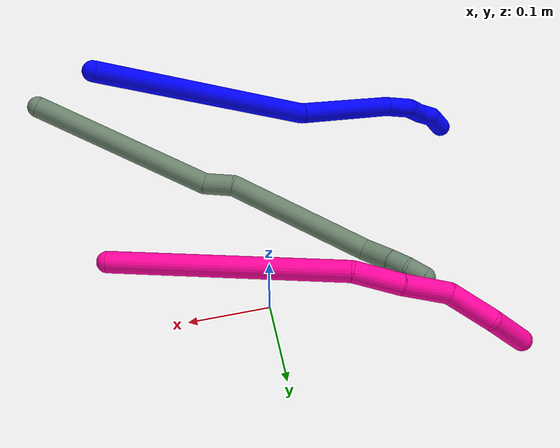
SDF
<sdf version="1.7">
 <world name="default">
  <model name="1">
   <static>0</static>
   <link name="1">
    <collision name="collision-cylinder-e_1_1_4">
     <pose>-0.005175 -0.004059 -0.13392 3.11129 -0.038607 -1.81082</pose>
     <geometry><cylinder><radius>0.0125</radius><length>0.268162</length></cylinder></geometry>
     <surface>
      <friction><ode><mu>1.16</mu><mu2>1.16</mu2><slip1>0</slip1><slip2>0</slip2></ode></friction>
      <contact><ode><kp>1e+06</kp><kd>1</kd><max_vel>0</max_vel><min_depth>0.001</min_depth></ode></contact>
     </surface>
    </collision>
    <visual name="visual-cylinder-e_1_1_4">
     <pose>-0.005175 -0.004059 -0.13392 3.11129 -0.038607 -1.81082</pose>
     <geometry><cylinder><radius>0.0125</radius><length>0.268162</length></cylinder></geometry>
     <material><ambient>0 0 1 1</ambient></material>
    </visual>
    <collision name="collision-cylinder-e_2_4_5">
     <pose>0.000253 0.002807 -0.332864 -2.97514 0.159446 -1.52762</pose>
     <geometry><cylinder><radius>0.0125</radius><length>0.133567</length></cylinder></geometry>
     <surface>
      <friction><ode><mu>1.16</mu><mu2>1.16</mu2><slip1>0</slip1><slip2>0</slip2></ode></friction>
      <contact><ode><kp>1e+06</kp><kd>1</kd><max_vel>0</max_vel><min_depth>0.001</min_depth></ode></contact>
     </surface>
    </collision>
    <visual name="visual-cylinder-e_2_4_5">
     <pose>0.000253 0.002807 -0.332864 -2.97514 0.159446 -1.52762</pose>
     <geometry><cylinder><radius>0.0125</radius><length>0.133567</length></cylinder></geometry>
     <material><ambient>0 0 1 1</ambient></material>
    </visual>
    <collision name="collision-cylinder-e_3_5_6">
     <pose>0.012374 0.012968 -0.415192 3.09748 0.08742 2.2074</pose>
     <geometry><cylinder><radius>0.0125</radius><length>0.034773</length></cylinder></geometry>
     <surface>
      <friction><ode><mu>1.16</mu><mu2>1.16</mu2><slip1>0</slip1><slip2>0</slip2></ode></friction>
      <contact><ode><kp>1e+06</kp><kd>1</kd><max_vel>0</max_vel><min_depth>0.001</min_depth></ode></contact>
     </surface>
    </collision>
    <visual name="visual-cylinder-e_3_5_6">
     <pose>0.012374 0.012968 -0.415192 3.09748 0.08742 2.2074</pose>
     <geometry><cylinder><radius>0.0125</radius><length>0.034773</length></cylinder></geometry>
     <material><ambient>0 0 1 1</ambient></material>
    </visual>
    <collision name="collision-cylinder-e_4_6_7">
     <pose>0.011241 0.014121 -0.442431 -2.95095 -0.256234 1.86461</pose>
     <geometry><cylinder><radius>0.0125</radius><length>0.020921</length></cylinder></geometry>
     <surface>
      <friction><ode><mu>1.16</mu><mu2>1.16</mu2><slip1>0</slip1><slip2>0</slip2></ode></friction>
      <contact><ode><kp>1e+06</kp><kd>1</kd><max_vel>0</max_vel><min_depth>0.001</min_depth></ode></contact>
     </surface>
    </collision>
    <visual name="visual-cylinder-e_4_6_7">
     <pose>0.011241 0.014121 -0.442431 -2.95095 -0.256234 1.86461</pose>
     <geometry><cylinder><radius>0.0125</radius><length>0.020921</length></cylinder></geometry>
     <material><ambient>0 0 1 1</ambient></material>
    </visual>
    <collision name="collision-cylinder-e_5_7_8">
     <pose>0.007535 0.01572 -0.46286 3.11117 -0.100203 -2.55258</pose>
     <geometry><cylinder><radius>0.0125</radius><length>0.021103</length></cylinder></geometry>
     <surface>
      <friction><ode><mu>1.16</mu><mu2>1.16</mu2><slip1>0</slip1><slip2>0</slip2></ode></friction>
      <contact><ode><kp>1e+06</kp><kd>1</kd><max_vel>0</max_vel><min_depth>0.001</min_depth></ode></contact>
     </surface>
    </collision>
    <visual name="visual-cylinder-e_5_7_8">
     <pose>0.007535 0.01572 -0.46286 3.11117 -0.100203 -2.55258</pose>
     <geometry><cylinder><radius>0.0125</radius><length>0.021103</length></cylinder></geometry>
     <material><ambient>0 0 1 1</ambient></material>
    </visual>
    <collision name="collision-cylinder-e_6_8_2">
     <pose>0.000643 0.015209 -0.482365 3.12039 -0.574662 -3.06988</pose>
     <geometry><cylinder><radius>0.0125</radius><length>0.021474</length></cylinder></geometry>
     <surface>
      <friction><ode><mu>1.16</mu><mu2>1.16</mu2><slip1>0</slip1><slip2>0</slip2></ode></friction>
      <contact><ode><kp>1e+06</kp><kd>1</kd><max_vel>0</max_vel><min_depth>0.001</min_depth></ode></contact>
     </surface>
    </collision>
    <visual name="visual-cylinder-e_6_8_2">
     <pose>0.000643 0.015209 -0.482365 3.12039 -0.574662 -3.06988</pose>
     <geometry><cylinder><radius>0.0125</radius><length>0.021474</length></cylinder></geometry>
     <material><ambient>0 0 1 1</ambient></material>
    </visual>
    <collision name="collision-sphere-2">
     <pose>-0.005193 0.015018 -0.491375 0 -0 0</pose>
     <geometry><sphere><radius>0.0125</radius></sphere></geometry>
     <surface>
      <friction><ode><mu>1.16</mu><mu2>1.16</mu2><slip1>0</slip1><slip2>0</slip2></ode></friction>
      <contact><ode><kp>1e+06</kp><kd>1</kd><max_vel>0</max_vel><min_depth>0.001</min_depth></ode></contact>
     </surface>
    </collision>
    <visual name="visual-sphere-2">
     <pose>-0.005193 0.015018 -0.491375 0 -0 0</pose>
     <geometry><sphere><radius>0.0125</radius></sphere></geometry>
     <material><ambient>0 0 1 1</ambient></material>
    </visual>
    <collision name="collision-sphere-4">
     <pose>-0.01035 -0.008118 -0.267839 0 -0 0</pose>
     <geometry><sphere><radius>0.0125</radius></sphere></geometry>
     <surface>
      <friction><ode><mu>1.16</mu><mu2>1.16</mu2><slip1>0</slip1><slip2>0</slip2></ode></friction>
      <contact><ode><kp>1e+06</kp><kd>1</kd><max_vel>0</max_vel><min_depth>0.001</min_depth></ode></contact>
     </surface>
    </collision>
    <visual name="visual-sphere-4">
     <pose>-0.01035 -0.008118 -0.267839 0 -0 0</pose>
     <geometry><sphere><radius>0.0125</radius></sphere></geometry>
     <material><ambient>0 0 1 1</ambient></material>
    </visual>
    <collision name="collision-sphere-1">
     <geometry><sphere><radius>0.0125</radius></sphere></geometry>
     <surface>
      <friction><ode><mu>1.16</mu><mu2>1.16</mu2><slip1>0</slip1><slip2>0</slip2></ode></friction>
      <contact><ode><kp>1e+06</kp><kd>1</kd><max_vel>0</max_vel><min_depth>0.001</min_depth></ode></contact>
     </surface>
    </collision>
    <visual name="visual-sphere-1">
     <geometry><sphere><radius>0.0125</radius></sphere></geometry>
     <material><ambient>0 0 1 1</ambient></material>
    </visual>
    <collision name="collision-sphere-8">
     <pose>0.006479 0.0154 -0.473354 0 -0 0</pose>
     <geometry><sphere><radius>0.0125</radius></sphere></geometry>
     <surface>
      <friction><ode><mu>1.16</mu><mu2>1.16</mu2><slip1>0</slip1><slip2>0</slip2></ode></friction>
      <contact><ode><kp>1e+06</kp><kd>1</kd><max_vel>0</max_vel><min_depth>0.001</min_depth></ode></contact>
     </surface>
    </collision>
    <visual name="visual-sphere-8">
     <pose>0.006479 0.0154 -0.473354 0 -0 0</pose>
     <geometry><sphere><radius>0.0125</radius></sphere></geometry>
     <material><ambient>0 0 1 1</ambient></material>
    </visual>
    <collision name="collision-sphere-5">
     <pose>0.010856 0.013731 -0.397889 0 -0 0</pose>
     <geometry><sphere><radius>0.0125</radius></sphere></geometry>
     <surface>
      <friction><ode><mu>1.16</mu><mu2>1.16</mu2><slip1>0</slip1><slip2>0</slip2></ode></friction>
      <contact><ode><kp>1e+06</kp><kd>1</kd><max_vel>0</max_vel><min_depth>0.001</min_depth></ode></contact>
     </surface>
    </collision>
    <visual name="visual-sphere-5">
     <pose>0.010856 0.013731 -0.397889 0 -0 0</pose>
     <geometry><sphere><radius>0.0125</radius></sphere></geometry>
     <material><ambient>0 0 1 1</ambient></material>
    </visual>
    <collision name="collision-sphere-6">
     <pose>0.013892 0.012204 -0.432495 0 -0 0</pose>
     <geometry><sphere><radius>0.0125</radius></sphere></geometry>
     <surface>
      <friction><ode><mu>1.16</mu><mu2>1.16</mu2><slip1>0</slip1><slip2>0</slip2></ode></friction>
      <contact><ode><kp>1e+06</kp><kd>1</kd><max_vel>0</max_vel><min_depth>0.001</min_depth></ode></contact>
     </surface>
    </collision>
    <visual name="visual-sphere-6">
     <pose>0.013892 0.012204 -0.432495 0 -0 0</pose>
     <geometry><sphere><radius>0.0125</radius></sphere></geometry>
     <material><ambient>0 0 1 1</ambient></material>
    </visual>
    <collision name="collision-sphere-7">
     <pose>0.00859 0.016039 -0.452366 0 -0 0</pose>
     <geometry><sphere><radius>0.0125</radius></sphere></geometry>
     <surface>
      <friction><ode><mu>1.16</mu><mu2>1.16</mu2><slip1>0</slip1><slip2>0</slip2></ode></friction>
      <contact><ode><kp>1e+06</kp><kd>1</kd><max_vel>0</max_vel><min_depth>0.001</min_depth></ode></contact>
     </surface>
    </collision>
    <visual name="visual-sphere-7">
     <pose>0.00859 0.016039 -0.452366 0 -0 0</pose>
     <geometry><sphere><radius>0.0125</radius></sphere></geometry>
     <material><ambient>0 0 1 1</ambient></material>
    </visual>
    <inertial>
     <pose>-0.001031 0.001382 -0.248383 0 -0 0</pose>
     <mass>0.5</mass>
     <inertia>
      <ixx>-0.002149</ixx>
      <ixy>0</ixy>
      <ixz>0</ixz>
      <iyy>-0.001376</iyy>
      <iyz>0</iyz>
      <izz>8e-06</izz>
     </inertia>
    </inertial>
   </link>
   <pose>0.158813 -0.218957 0.223217 -0.866759 -0.891704 -2.16888</pose>
  </model>
  <model name="17">
   <static>0</static>
   <link name="17">
    <collision name="collision-cylinder-e_1_1_4">
     <pose>-0.051538 0.062038 -0.071514 -2.42704 -0.498514 1.19694</pose>
     <geometry><cylinder><radius>0.0125</radius><length>0.215584</length></cylinder></geometry>
     <surface>
      <friction><ode><mu>1.16</mu><mu2>1.16</mu2><slip1>0</slip1><slip2>0</slip2></ode></friction>
      <contact><ode><kp>1e+06</kp><kd>1</kd><max_vel>0</max_vel><min_depth>0.001</min_depth></ode></contact>
     </surface>
    </collision>
    <visual name="visual-cylinder-e_1_1_4">
     <pose>-0.051538 0.062038 -0.071514 -2.42704 -0.498514 1.19694</pose>
     <geometry><cylinder><radius>0.0125</radius><length>0.215584</length></cylinder></geometry>
     <material><ambient>0.415686 0.509804 0.423529 1</ambient></material>
    </visual>
    <collision name="collision-cylinder-e_2_4_5">
     <pose>-0.116188 0.129684 -0.153124 -2.6345 -0.848737 2.10018</pose>
     <geometry><cylinder><radius>0.0125</radius><length>0.034947</length></cylinder></geometry>
     <surface>
      <friction><ode><mu>1.16</mu><mu2>1.16</mu2><slip1>0</slip1><slip2>0</slip2></ode></friction>
      <contact><ode><kp>1e+06</kp><kd>1</kd><max_vel>0</max_vel><min_depth>0.001</min_depth></ode></contact>
     </surface>
    </collision>
    <visual name="visual-cylinder-e_2_4_5">
     <pose>-0.116188 0.129684 -0.153124 -2.6345 -0.848737 2.10018</pose>
     <geometry><cylinder><radius>0.0125</radius><length>0.034947</length></cylinder></geometry>
     <material><ambient>0.415686 0.509804 0.423529 1</ambient></material>
    </visual>
    <collision name="collision-cylinder-e_3_5_6">
     <pose>-0.175279 0.189335 -0.210515 -2.2897 -0.569472 1.14582</pose>
     <geometry><cylinder><radius>0.0125</radius><length>0.170546</length></cylinder></geometry>
     <surface>
      <friction><ode><mu>1.16</mu><mu2>1.16</mu2><slip1>0</slip1><slip2>0</slip2></ode></friction>
      <contact><ode><kp>1e+06</kp><kd>1</kd><max_vel>0</max_vel><min_depth>0.001</min_depth></ode></contact>
     </surface>
    </collision>
    <visual name="visual-cylinder-e_3_5_6">
     <pose>-0.175279 0.189335 -0.210515 -2.2897 -0.569472 1.14582</pose>
     <geometry><cylinder><radius>0.0125</radius><length>0.170546</length></cylinder></geometry>
     <material><ambient>0.415686 0.509804 0.423529 1</ambient></material>
    </visual>
    <collision name="collision-cylinder-e_4_6_7">
     <pose>-0.23414 0.254495 -0.261308 -1.87572 -0.835448 1.08818</pose>
     <geometry><cylinder><radius>0.0125</radius><length>0.034743</length></cylinder></geometry>
     <surface>
      <friction><ode><mu>1.16</mu><mu2>1.16</mu2><slip1>0</slip1><slip2>0</slip2></ode></friction>
      <contact><ode><kp>1e+06</kp><kd>1</kd><max_vel>0</max_vel><min_depth>0.001</min_depth></ode></contact>
     </surface>
    </collision>
    <visual name="visual-cylinder-e_4_6_7">
     <pose>-0.23414 0.254495 -0.261308 -1.87572 -0.835448 1.08818</pose>
     <geometry><cylinder><radius>0.0125</radius><length>0.034743</length></cylinder></geometry>
     <material><ambient>0.415686 0.509804 0.423529 1</ambient></material>
    </visual>
    <collision name="collision-cylinder-e_5_7_8">
     <pose>-0.254554 0.27284 -0.26784 -1.96803 -0.765336 1.08871</pose>
     <geometry><cylinder><radius>0.0125</radius><length>0.021742</length></cylinder></geometry>
     <surface>
      <friction><ode><mu>1.16</mu><mu2>1.16</mu2><slip1>0</slip1><slip2>0</slip2></ode></friction>
      <contact><ode><kp>1e+06</kp><kd>1</kd><max_vel>0</max_vel><min_depth>0.001</min_depth></ode></contact>
     </surface>
    </collision>
    <visual name="visual-cylinder-e_5_7_8">
     <pose>-0.254554 0.27284 -0.26784 -1.96803 -0.765336 1.08871</pose>
     <geometry><cylinder><radius>0.0125</radius><length>0.021742</length></cylinder></geometry>
     <material><ambient>0.415686 0.509804 0.423529 1</ambient></material>
    </visual>
    <collision name="collision-cylinder-e_6_8_2">
     <pose>-0.268184 0.287855 -0.276168 -2.16802 -0.5748 1.01866</pose>
     <geometry><cylinder><radius>0.0125</radius><length>0.022439</length></cylinder></geometry>
     <surface>
      <friction><ode><mu>1.16</mu><mu2>1.16</mu2><slip1>0</slip1><slip2>0</slip2></ode></friction>
      <contact><ode><kp>1e+06</kp><kd>1</kd><max_vel>0</max_vel><min_depth>0.001</min_depth></ode></contact>
     </surface>
    </collision>
    <visual name="visual-cylinder-e_6_8_2">
     <pose>-0.268184 0.287855 -0.276168 -2.16802 -0.5748 1.01866</pose>
     <geometry><cylinder><radius>0.0125</radius><length>0.022439</length></cylinder></geometry>
     <material><ambient>0.415686 0.509804 0.423529 1</ambient></material>
    </visual>
    <collision name="collision-sphere-2">
     <pose>-0.274284 0.295642 -0.281463 0 -0 0</pose>
     <geometry><sphere><radius>0.0125</radius></sphere></geometry>
     <surface>
      <friction><ode><mu>1.16</mu><mu2>1.16</mu2><slip1>0</slip1><slip2>0</slip2></ode></friction>
      <contact><ode><kp>1e+06</kp><kd>1</kd><max_vel>0</max_vel><min_depth>0.001</min_depth></ode></contact>
     </surface>
    </collision>
    <visual name="visual-sphere-2">
     <pose>-0.274284 0.295642 -0.281463 0 -0 0</pose>
     <geometry><sphere><radius>0.0125</radius></sphere></geometry>
     <material><ambient>0.415686 0.509804 0.423529 1</ambient></material>
    </visual>
    <collision name="collision-sphere-4">
     <pose>-0.103075 0.124075 -0.143029 0 -0 0</pose>
     <geometry><sphere><radius>0.0125</radius></sphere></geometry>
     <surface>
      <friction><ode><mu>1.16</mu><mu2>1.16</mu2><slip1>0</slip1><slip2>0</slip2></ode></friction>
      <contact><ode><kp>1e+06</kp><kd>1</kd><max_vel>0</max_vel><min_depth>0.001</min_depth></ode></contact>
     </surface>
    </collision>
    <visual name="visual-sphere-4">
     <pose>-0.103075 0.124075 -0.143029 0 -0 0</pose>
     <geometry><sphere><radius>0.0125</radius></sphere></geometry>
     <material><ambient>0.415686 0.509804 0.423529 1</ambient></material>
    </visual>
    <collision name="collision-sphere-1">
     <geometry><sphere><radius>0.0125</radius></sphere></geometry>
     <surface>
      <friction><ode><mu>1.16</mu><mu2>1.16</mu2><slip1>0</slip1><slip2>0</slip2></ode></friction>
      <contact><ode><kp>1e+06</kp><kd>1</kd><max_vel>0</max_vel><min_depth>0.001</min_depth></ode></contact>
     </surface>
    </collision>
    <visual name="visual-sphere-1">
     <geometry><sphere><radius>0.0125</radius></sphere></geometry>
     <material><ambient>0.415686 0.509804 0.423529 1</ambient></material>
    </visual>
    <collision name="collision-sphere-8">
     <pose>-0.262085 0.280069 -0.270873 0 -0 0</pose>
     <geometry><sphere><radius>0.0125</radius></sphere></geometry>
     <surface>
      <friction><ode><mu>1.16</mu><mu2>1.16</mu2><slip1>0</slip1><slip2>0</slip2></ode></friction>
      <contact><ode><kp>1e+06</kp><kd>1</kd><max_vel>0</max_vel><min_depth>0.001</min_depth></ode></contact>
     </surface>
    </collision>
    <visual name="visual-sphere-8">
     <pose>-0.262085 0.280069 -0.270873 0 -0 0</pose>
     <geometry><sphere><radius>0.0125</radius></sphere></geometry>
     <material><ambient>0.415686 0.509804 0.423529 1</ambient></material>
    </visual>
    <collision name="collision-sphere-5">
     <pose>-0.129301 0.135292 -0.16322 0 -0 0</pose>
     <geometry><sphere><radius>0.0125</radius></sphere></geometry>
     <surface>
      <friction><ode><mu>1.16</mu><mu2>1.16</mu2><slip1>0</slip1><slip2>0</slip2></ode></friction>
      <contact><ode><kp>1e+06</kp><kd>1</kd><max_vel>0</max_vel><min_depth>0.001</min_depth></ode></contact>
     </surface>
    </collision>
    <visual name="visual-sphere-5">
     <pose>-0.129301 0.135292 -0.16322 0 -0 0</pose>
     <geometry><sphere><radius>0.0125</radius></sphere></geometry>
     <material><ambient>0.415686 0.509804 0.423529 1</ambient></material>
    </visual>
    <collision name="collision-sphere-6">
     <pose>-0.221257 0.243379 -0.25781 0 -0 0</pose>
     <geometry><sphere><radius>0.0125</radius></sphere></geometry>
     <surface>
      <friction><ode><mu>1.16</mu><mu2>1.16</mu2><slip1>0</slip1><slip2>0</slip2></ode></friction>
      <contact><ode><kp>1e+06</kp><kd>1</kd><max_vel>0</max_vel><min_depth>0.001</min_depth></ode></contact>
     </surface>
    </collision>
    <visual name="visual-sphere-6">
     <pose>-0.221257 0.243379 -0.25781 0 -0 0</pose>
     <geometry><sphere><radius>0.0125</radius></sphere></geometry>
     <material><ambient>0.415686 0.509804 0.423529 1</ambient></material>
    </visual>
    <collision name="collision-sphere-7">
     <pose>-0.247022 0.265611 -0.264807 0 -0 0</pose>
     <geometry><sphere><radius>0.0125</radius></sphere></geometry>
     <surface>
      <friction><ode><mu>1.16</mu><mu2>1.16</mu2><slip1>0</slip1><slip2>0</slip2></ode></friction>
      <contact><ode><kp>1e+06</kp><kd>1</kd><max_vel>0</max_vel><min_depth>0.001</min_depth></ode></contact>
     </surface>
    </collision>
    <visual name="visual-sphere-7">
     <pose>-0.247022 0.265611 -0.264807 0 -0 0</pose>
     <geometry><sphere><radius>0.0125</radius></sphere></geometry>
     <material><ambient>0.415686 0.509804 0.423529 1</ambient></material>
    </visual>
    <inertial>
     <pose>-0.129502 0.142859 -0.15554 0 -0 0</pose>
     <mass>0.5</mass>
     <inertia>
      <ixx>0.001416</ixx>
      <ixy>0</ixy>
      <ixz>0</ixz>
      <iyy>0.001104</iyy>
      <iyz>0</iyz>
      <izz>-0.000141</izz>
     </inertia>
    </inertial>
   </link>
   <pose>0.23044 -0.226744 0.169954 -0.373625 0.776482 -0.250277</pose>
  </model>
  <model name="18">
   <static>0</static>
   <link name="18">
    <collision name="collision-cylinder-e_1_1_4">
     <pose>-0.100507 -0.053172 0.077002 0.604342 -0.821091 -0.269721</pose>
     <geometry><cylinder><radius>0.0125</radius><length>0.274651</length></cylinder></geometry>
     <surface>
      <friction><ode><mu>1.16</mu><mu2>1.16</mu2><slip1>0</slip1><slip2>0</slip2></ode></friction>
      <contact><ode><kp>1e+06</kp><kd>1</kd><max_vel>0</max_vel><min_depth>0.001</min_depth></ode></contact>
     </surface>
    </collision>
    <visual name="visual-cylinder-e_1_1_4">
     <pose>-0.100507 -0.053172 0.077002 0.604342 -0.821091 -0.269721</pose>
     <geometry><cylinder><radius>0.0125</radius><length>0.274651</length></cylinder></geometry>
     <material><ambient>1 0.007843 0.615686 1</ambient></material>
    </visual>
    <collision name="collision-cylinder-e_2_4_5">
     <pose>-0.222986 -0.108927 0.172051 0.142128 -0.878186 -0.066841</pose>
     <geometry><cylinder><radius>0.0125</radius><length>0.0571</length></cylinder></geometry>
     <surface>
      <friction><ode><mu>1.16</mu><mu2>1.16</mu2><slip1>0</slip1><slip2>0</slip2></ode></friction>
      <contact><ode><kp>1e+06</kp><kd>1</kd><max_vel>0</max_vel><min_depth>0.001</min_depth></ode></contact>
     </surface>
    </collision>
    <visual name="visual-cylinder-e_2_4_5">
     <pose>-0.222986 -0.108927 0.172051 0.142128 -0.878186 -0.066841</pose>
     <geometry><cylinder><radius>0.0125</radius><length>0.0571</length></cylinder></geometry>
     <material><ambient>1 0.007843 0.615686 1</ambient></material>
    </visual>
    <collision name="collision-cylinder-e_3_5_6">
     <pose>-0.269113 -0.111885 0.204263 0.026511 -1.04028 -0.015185</pose>
     <geometry><cylinder><radius>0.0125</radius><length>0.056009</length></cylinder></geometry>
     <surface>
      <friction><ode><mu>1.16</mu><mu2>1.16</mu2><slip1>0</slip1><slip2>0</slip2></ode></friction>
      <contact><ode><kp>1e+06</kp><kd>1</kd><max_vel>0</max_vel><min_depth>0.001</min_depth></ode></contact>
     </surface>
    </collision>
    <visual name="visual-cylinder-e_3_5_6">
     <pose>-0.269113 -0.111885 0.204263 0.026511 -1.04028 -0.015185</pose>
     <geometry><cylinder><radius>0.0125</radius><length>0.056009</length></cylinder></geometry>
     <material><ambient>1 0.007843 0.615686 1</ambient></material>
    </visual>
    <collision name="collision-cylinder-e_4_6_7">
     <pose>-0.3103 -0.10959 0.240829 -0.118646 -0.646636 0.039797</pose>
     <geometry><cylinder><radius>0.0125</radius><length>0.056535</length></cylinder></geometry>
     <surface>
      <friction><ode><mu>1.16</mu><mu2>1.16</mu2><slip1>0</slip1><slip2>0</slip2></ode></friction>
      <contact><ode><kp>1e+06</kp><kd>1</kd><max_vel>0</max_vel><min_depth>0.001</min_depth></ode></contact>
     </surface>
    </collision>
    <visual name="visual-cylinder-e_4_6_7">
     <pose>-0.3103 -0.10959 0.240829 -0.118646 -0.646636 0.039797</pose>
     <geometry><cylinder><radius>0.0125</radius><length>0.056535</length></cylinder></geometry>
     <material><ambient>1 0.007843 0.615686 1</ambient></material>
    </visual>
    <collision name="collision-cylinder-e_5_7_2">
     <pose>-0.348376 -0.094312 0.276419 -0.762942 -0.856546 0.362234</pose>
     <geometry><cylinder><radius>0.0125</radius><length>0.055704</length></cylinder></geometry>
     <surface>
      <friction><ode><mu>1.16</mu><mu2>1.16</mu2><slip1>0</slip1><slip2>0</slip2></ode></friction>
      <contact><ode><kp>1e+06</kp><kd>1</kd><max_vel>0</max_vel><min_depth>0.001</min_depth></ode></contact>
     </surface>
    </collision>
    <visual name="visual-cylinder-e_5_7_2">
     <pose>-0.348376 -0.094312 0.276419 -0.762942 -0.856546 0.362234</pose>
     <geometry><cylinder><radius>0.0125</radius><length>0.055704</length></cylinder></geometry>
     <material><ambient>1 0.007843 0.615686 1</ambient></material>
    </visual>
    <collision name="collision-sphere-2">
     <pose>-0.36942 -0.081704 0.289606 0 -0 0</pose>
     <geometry><sphere><radius>0.0125</radius></sphere></geometry>
     <surface>
      <friction><ode><mu>1.16</mu><mu2>1.16</mu2><slip1>0</slip1><slip2>0</slip2></ode></friction>
      <contact><ode><kp>1e+06</kp><kd>1</kd><max_vel>0</max_vel><min_depth>0.001</min_depth></ode></contact>
     </surface>
    </collision>
    <visual name="visual-sphere-2">
     <pose>-0.36942 -0.081704 0.289606 0 -0 0</pose>
     <geometry><sphere><radius>0.0125</radius></sphere></geometry>
     <material><ambient>1 0.007843 0.615686 1</ambient></material>
    </visual>
    <collision name="collision-sphere-7">
     <pose>-0.327331 -0.10692 0.263231 0 -0 0</pose>
     <geometry><sphere><radius>0.0125</radius></sphere></geometry>
     <surface>
      <friction><ode><mu>1.16</mu><mu2>1.16</mu2><slip1>0</slip1><slip2>0</slip2></ode></friction>
      <contact><ode><kp>1e+06</kp><kd>1</kd><max_vel>0</max_vel><min_depth>0.001</min_depth></ode></contact>
     </surface>
    </collision>
    <visual name="visual-sphere-7">
     <pose>-0.327331 -0.10692 0.263231 0 -0 0</pose>
     <geometry><sphere><radius>0.0125</radius></sphere></geometry>
     <material><ambient>1 0.007843 0.615686 1</ambient></material>
    </visual>
    <collision name="collision-sphere-6">
     <pose>-0.293268 -0.112261 0.218427 0 -0 0</pose>
     <geometry><sphere><radius>0.0125</radius></sphere></geometry>
     <surface>
      <friction><ode><mu>1.16</mu><mu2>1.16</mu2><slip1>0</slip1><slip2>0</slip2></ode></friction>
      <contact><ode><kp>1e+06</kp><kd>1</kd><max_vel>0</max_vel><min_depth>0.001</min_depth></ode></contact>
     </surface>
    </collision>
    <visual name="visual-sphere-6">
     <pose>-0.293268 -0.112261 0.218427 0 -0 0</pose>
     <geometry><sphere><radius>0.0125</radius></sphere></geometry>
     <material><ambient>1 0.007843 0.615686 1</ambient></material>
    </visual>
    <collision name="collision-sphere-5">
     <pose>-0.244958 -0.111509 0.190098 0 -0 0</pose>
     <geometry><sphere><radius>0.0125</radius></sphere></geometry>
     <surface>
      <friction><ode><mu>1.16</mu><mu2>1.16</mu2><slip1>0</slip1><slip2>0</slip2></ode></friction>
      <contact><ode><kp>1e+06</kp><kd>1</kd><max_vel>0</max_vel><min_depth>0.001</min_depth></ode></contact>
     </surface>
    </collision>
    <visual name="visual-sphere-5">
     <pose>-0.244958 -0.111509 0.190098 0 -0 0</pose>
     <geometry><sphere><radius>0.0125</radius></sphere></geometry>
     <material><ambient>1 0.007843 0.615686 1</ambient></material>
    </visual>
    <collision name="collision-sphere-1">
     <geometry><sphere><radius>0.0125</radius></sphere></geometry>
     <surface>
      <friction><ode><mu>1.16</mu><mu2>1.16</mu2><slip1>0</slip1><slip2>0</slip2></ode></friction>
      <contact><ode><kp>1e+06</kp><kd>1</kd><max_vel>0</max_vel><min_depth>0.001</min_depth></ode></contact>
     </surface>
    </collision>
    <visual name="visual-sphere-1">
     <geometry><sphere><radius>0.0125</radius></sphere></geometry>
     <material><ambient>1 0.007843 0.615686 1</ambient></material>
    </visual>
    <collision name="collision-sphere-4">
     <pose>-0.201014 -0.106345 0.154004 0 -0 0</pose>
     <geometry><sphere><radius>0.0125</radius></sphere></geometry>
     <surface>
      <friction><ode><mu>1.16</mu><mu2>1.16</mu2><slip1>0</slip1><slip2>0</slip2></ode></friction>
      <contact><ode><kp>1e+06</kp><kd>1</kd><max_vel>0</max_vel><min_depth>0.001</min_depth></ode></contact>
     </surface>
    </collision>
    <visual name="visual-sphere-4">
     <pose>-0.201014 -0.106345 0.154004 0 -0 0</pose>
     <geometry><sphere><radius>0.0125</radius></sphere></geometry>
     <material><ambient>1 0.007843 0.615686 1</ambient></material>
    </visual>
    <inertial>
     <pose>-0.184717 -0.077079 0.142853 0 -0 0</pose>
     <mass>0.5</mass>
     <inertia>
      <ixx>0.000844</ixx>
      <ixy>0</ixy>
      <ixz>0</ixz>
      <iyy>0.001318</iyy>
      <iyz>0</iyz>
      <izz>0.002011</izz>
     </inertia>
    </inertial>
   </link>
   <pose>0.178483 -0.0342 0.109517 -1.66952 -0.304725 0.327424</pose>
  </model>
 </world>
</sdf>
